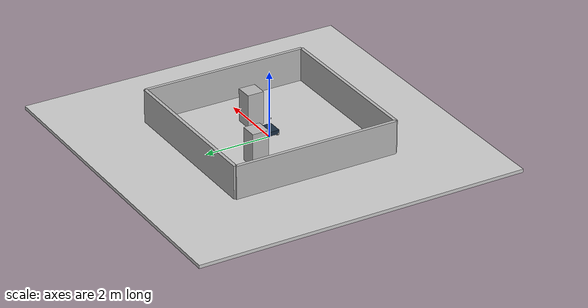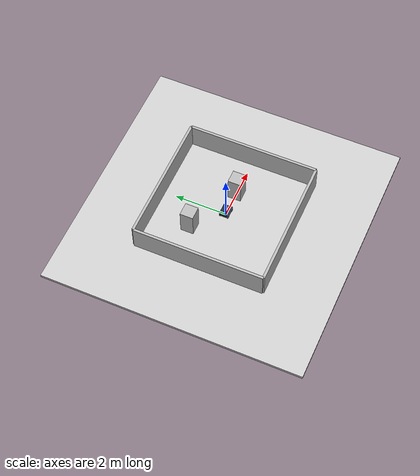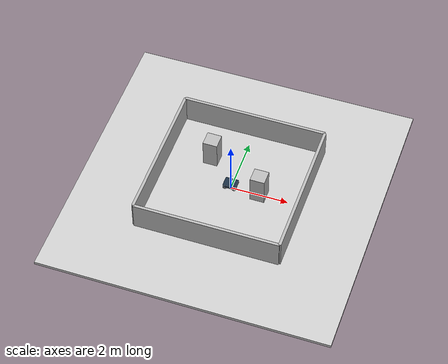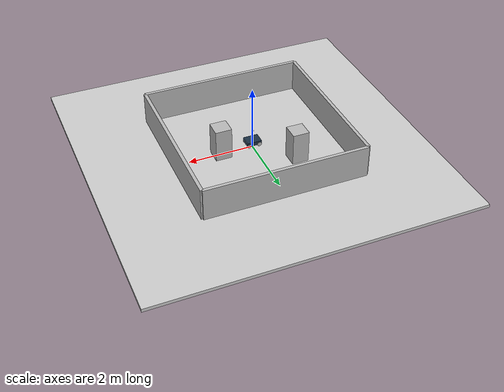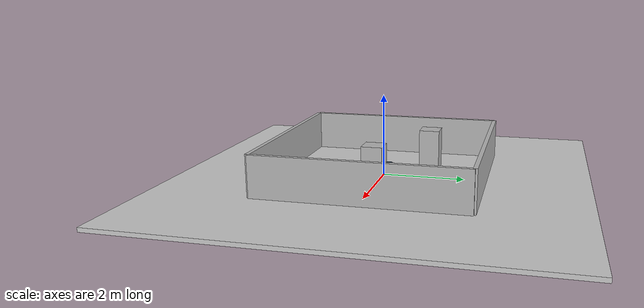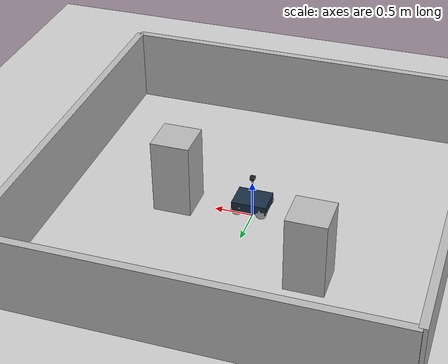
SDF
<?xml version="1.0"?>
<sdf version="1.9">
  <world name="room_world">

    <!-- Немного настроек сцены, чтоб не было темноты -->
    <scene>
      <ambient>0.4 0.4 0.4 1</ambient>
      <background>0.7 0.7 0.7 1</background>
    </scene>

    <!-- Гравитация по умолчанию -->
    <gravity>0 0 -9.81</gravity>

    <!-- Свет -->
    <light name="sun" type="directional">
      <cast_shadows>true</cast_shadows>
      <pose>0 0 10 0.3 0 -0.5</pose>
      <diffuse>1 1 1 1</diffuse>
      <specular>0.2 0.2 0.2 1</specular>
      <direction>-0.5 0.5 -1</direction>
    </light>

    <!-- Пол (10x10 м) -->
    <model name="ground">
      <static>true</static>
      <link name="ground_link">
        <pose>0 0 -0.05 0 0 0</pose>
        <collision name="collision">
          <geometry>
            <box>
              <size>10 10 0.1</size>
            </box>
          </geometry>
        </collision>
        <visual name="visual">
          <geometry>
            <box>
              <size>10 10 0.1</size>
            </box>
          </geometry>
          <material>
            <ambient>0.6 0.6 0.6 1</ambient>
            <diffuse>0.8 0.8 0.8 1</diffuse>
            <specular>0.1 0.1 0.1 1</specular>
          </material>
        </visual>
      </link>
    </model>

    <!-- Стены комнаты 5x5 м -->
    <model name="wall_north">
      <static>true</static>
      <link name="link">
        <pose>0 2.5 0.5 0 0 0</pose>
        <collision name="collision">
          <geometry>
            <box><size>5 0.1 1</size></box>
          </geometry>
        </collision>
        <visual name="visual">
          <geometry>
            <box><size>5 0.1 1</size></box>
          </geometry>
        </visual>
      </link>
    </model>

    <model name="wall_south">
      <static>true</static>
      <link name="link">
        <pose>0 -2.5 0.5 0 0 0</pose>
        <collision name="collision">
          <geometry>
            <box><size>5 0.1 1</size></box>
          </geometry>
        </collision>
        <visual name="visual">
          <geometry>
            <box><size>5 0.1 1</size></box>
          </geometry>
        </visual>
      </link>
    </model>

    <model name="wall_east">
      <static>true</static>
      <link name="link">
        <pose>2.5 0 0.5 0 0 0</pose>
        <collision name="collision">
          <geometry>
            <box><size>0.1 5 1</size></box>
          </geometry>
        </collision>
        <visual name="visual">
          <geometry>
            <box><size>0.1 5 1</size></box>
          </geometry>
        </visual>
      </link>
    </model>

    <model name="wall_west">
      <static>true</static>
      <link name="link">
        <pose>-2.5 0 0.5 0 0 0</pose>
        <collision name="collision">
          <geometry>
            <box><size>0.1 5 1</size></box>
          </geometry>
        </collision>
        <visual name="visual">
          <geometry>
            <box><size>0.1 5 1</size></box>
          </geometry>
        </visual>
      </link>
    </model>

    <!-- Препятствия: два куба -->
    <model name="box1">
      <static>true</static>
      <link name="link">
        <pose>1.0 0 0.5 0 0 0</pose>
        <collision name="collision">
          <geometry>
            <box><size>0.5 0.5 1.0</size></box>
          </geometry>
        </collision>
        <visual name="visual">
          <geometry>
            <box><size>0.5 0.5 1.0</size></box>
          </geometry>
        </visual>
      </link>
    </model>

    <model name="box2">
      <static>true</static>
      <link name="link">
        <pose>-1.0 1.0 0.5 0 0 0</pose>
        <collision name="collision">
          <geometry>
            <box><size>0.5 0.5 1.0</size></box>
          </geometry>
        </collision>
        <visual name="visual">
          <geometry>
            <box><size>0.5 0.5 1.0</size></box>
          </geometry>
        </visual>
      </link>
    </model>

    <!-- Робот -->
    <include name="diff_robot">
      <uri>model://diff_robot</uri>
      <pose>0 0 0.1 0 0 0</pose>
    </include>

  </world>
</sdf>

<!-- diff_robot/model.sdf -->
<sdf version="1.9">
  <model name="diff_robot">
    <static>false</static>
    <pose>0 0 0 0 0 0</pose>

    <!-- ================== КОРПУС ================== -->
    <link name="base_link">
      <pose>0 0 0.12 0 0 0</pose>
      <inertial>
        <mass>12.0</mass>
        <inertia>
          <ixx>0.18</ixx><ixy>0</ixy><ixz>0</ixz>
          <iyy>0.24</iyy><iyz>0</iyz>
          <izz>0.30</izz>
        </inertia>
      </inertial>
      <visual name="base_vis">
        <geometry>
          <box><size>0.45 0.35 0.12</size></box>
        </geometry>
        <material>
          <ambient>0.08 0.12 0.18 1</ambient>
          <diffuse>0.10 0.18 0.26 1</diffuse>
        </material>
      </visual>
      <collision name="base_col">
        <geometry>
          <box><size>0.45 0.35 0.12</size></box>
        </geometry>
      </collision>
    </link>

    <!-- ================== КОЛЁСА ================== -->
    <link name="wheel_fl">
      <pose>0.16 0.15 0.07 1.57079632679 0 0</pose>
      <inertial>
        <mass>0.6</mass>
        <inertia>
          <ixx>0.0012</ixx><ixy>0</ixy><ixz>0</ixz>
          <iyy>0.0006</iyy><iyz>0</iyz>
          <izz>0.0012</izz>
        </inertia>
      </inertial>
      <visual name="vis">
        <geometry>
          <cylinder><radius>0.07</radius><length>0.05</length></cylinder>
        </geometry>
      </visual>
      <collision name="col">
        <geometry>
          <cylinder><radius>0.07</radius><length>0.05</length></cylinder>
        </geometry>
      </collision>
    </link>
    <joint name="wheel_fl_joint" type="revolute">
      <parent>base_link</parent>
      <child>wheel_fl</child>
      <axis>
        <xyz expressed_in="wheel_fl">0 0 1</xyz>
        <limit><lower>-1e16</lower><upper>1e16</upper></limit>
      </axis>
    </joint>

    <link name="wheel_fr">
      <pose>0.16 -0.15 0.07 1.57079632679 0 0</pose>
      <inertial>
        <mass>0.6</mass>
        <inertia>
          <ixx>0.0012</ixx><ixy>0</ixy><ixz>0</ixz>
          <iyy>0.0006</iyy><iyz>0</iyz>
          <izz>0.0012</izz>
        </inertia>
      </inertial>
      <visual name="vis">
        <geometry>
          <cylinder><radius>0.07</radius><length>0.05</length></cylinder>
        </geometry>
      </visual>
      <collision name="col">
        <geometry>
          <cylinder><radius>0.07</radius><length>0.05</length></cylinder>
        </geometry>
      </collision>
    </link>
    <joint name="wheel_fr_joint" type="revolute">
      <parent>base_link</parent>
      <child>wheel_fr</child>
      <axis>
        <xyz expressed_in="wheel_fr">0 0 1</xyz>
        <limit><lower>-1e16</lower><upper>1e16</upper></limit>
      </axis>
    </joint>

    <link name="wheel_rl">
      <pose>-0.16 0.15 0.07 1.57079632679 0 0</pose>
      <inertial>
        <mass>0.6</mass>
        <inertia>
          <ixx>0.0012</ixx><ixy>0</ixy><ixz>0</ixz>
          <iyy>0.0006</iyy><iyz>0</iyz>
          <izz>0.0012</izz>
        </inertia>
      </inertial>
      <visual name="vis">
        <geometry>
          <cylinder><radius>0.07</radius><length>0.05</length></cylinder>
        </geometry>
      </visual>
      <collision name="col">
        <geometry>
          <cylinder><radius>0.07</radius><length>0.05</length></cylinder>
        </geometry>
      </collision>
    </link>
    <joint name="wheel_rl_joint" type="revolute">
      <parent>base_link</parent>
      <child>wheel_rl</child>
      <axis>
        <xyz expressed_in="wheel_rl">0 0 1</xyz>
        <limit><lower>-1e16</lower><upper>1e16</upper></limit>
      </axis>
    </joint>

    <link name="wheel_rr">
      <pose>-0.16 -0.15 0.07 1.57079632679 0 0</pose>
      <inertial>
        <mass>0.6</mass>
        <inertia>
          <ixx>0.0012</ixx><ixy>0</ixy><ixz>0</ixz>
          <iyy>0.0006</iyy><iyz>0</iyz>
          <izz>0.0012</izz>
        </inertia>
      </inertial>
      <visual name="vis">
        <geometry>
          <cylinder><radius>0.07</radius><length>0.05</length></cylinder>
        </geometry>
      </visual>
      <collision name="col">
        <geometry>
          <cylinder><radius>0.07</radius><length>0.05</length></cylinder>
        </geometry>
      </collision>
    </link>
    <joint name="wheel_rr_joint" type="revolute">
      <parent>base_link</parent>
      <child>wheel_rr</child>
      <axis>
        <xyz expressed_in="wheel_rr">0 0 1</xyz>
        <limit><lower>-1e16</lower><upper>1e16</upper></limit>
      </axis>
    </joint>

    <!-- ================== СЕНСОРНАЯ МАЧТА ================== -->
    <link name="mast_link">
      <pose>0 0 0.30 0 0 0</pose>
      <inertial>
        <mass>0.08</mass>
        <inertia>
          <ixx>0.0004</ixx><ixy>0</ixy><ixz>0</ixz>
          <iyy>0.0004</iyy><iyz>0</iyz>
          <izz>0.0004</izz>
        </inertia>
      </inertial>
      <visual name="mast_vis">
        <geometry>
          <cylinder><radius>0.01</radius><length>0.36</length></cylinder>
        </geometry>
        <material>
          <ambient>0.18 0.18 0.18 1</ambient>
          <diffuse>0.22 0.22 0.22 1</diffuse>
        </material>
      </visual>
      <collision name="mast_col">
        <geometry>
          <cylinder><radius>0.01</radius><length>0.36</length></cylinder>
        </geometry>
      </collision>
    </link>
    <joint name="mast_fixed" type="fixed">
      <parent>base_link</parent>
      <child>mast_link</child>
    </joint>

    <!-- RGB-D камера на верхушке мачты -->
    <link name="camera_link">
      <pose>0 0 0.48 0 0 0</pose>
      <inertial>
        <mass>0.12</mass>
        <inertia>
          <ixx>0.0008</ixx><ixy>0</ixy><ixz>0</ixz>
          <iyy>0.0008</iyy><iyz>0</iyz>
          <izz>0.0008</izz>
        </inertia>
      </inertial>

      <sensor name="rgbd_camera" type="rgbd_camera">
        <pose>0 0 0 0 -1.57079632679 0</pose>
        <always_on>true</always_on>
        <update_rate>15</update_rate>
        <visualize>true</visualize>

        <topic>/camera/color/image</topic>
        <depth_topic>/camera/depth/image</depth_topic>
        <point_cloud_topic>/camera/depth/points</point_cloud_topic>
        <camera_info_topic>/camera/color/camera_info</camera_info_topic>
        <frame_id>camera_link</frame_id>

        <camera>
          <horizontal_fov>1.047</horizontal_fov>
          <image>
            <width>640</width>
            <height>480</height>
            <format>R8G8B8</format>
          </image>
          <clip>
            <near>0.05</near>
            <far>25</far>
          </clip>
        </camera>
      </sensor>

      <visual name="cam_body">
        <geometry>
          <box><size>0.06 0.06 0.04</size></box>
        </geometry>
        <material>
          <ambient>0.08 0.08 0.08 1</ambient>
          <diffuse>0.10 0.10 0.10 1</diffuse>
        </material>
      </visual>
      <collision name="cam_col">
        <geometry>
          <box><size>0.06 0.06 0.04</size></box>
        </geometry>
      </collision>
    </link>
    <joint name="camera_fixed" type="fixed">
      <parent>mast_link</parent>
      <child>camera_link</child>
    </joint>

    <!-- Лидар 2D (GPU Lidar для Harmonic) -->
    <link name="lidar_link">
      <pose>0.18 0 0.34 0 0 0</pose>
      <inertial>
        <mass>0.10</mass>
        <inertia>
          <ixx>0.0002</ixx><ixy>0</ixy><ixz>0</ixz>
          <iyy>0.0002</iyy><iyz>0</iyz>
          <izz>0.0002</izz>
        </inertia>
      </inertial>

      <sensor name="lidar" type="gpu_lidar">
        <pose>0 0 0 0 0 0</pose>
        <always_on>true</always_on>
        <update_rate>15</update_rate>
        <visualize>true</visualize>

        <topic>/scan</topic>
        <frame_id>lidar_link</frame_id>

        <lidar>
          <scan>
            <horizontal>
              <samples>720</samples>
              <resolution>1</resolution>
              <min_angle>-3.14159</min_angle>
              <max_angle>3.14159</max_angle>
            </horizontal>
          </scan>
          <range>
            <min>0.18</min>
            <max>18.0</max>
          </range>
        </lidar>
      </sensor>
    </link>
    <joint name="lidar_joint" type="fixed">
      <parent>base_link</parent>
      <child>lidar_link</child>
    </joint>

    <!-- IMU -->
    <link name="imu_link">
      <pose>0 0 0.20 0 0 0</pose>
      <inertial>
        <mass>0.05</mass>
        <inertia>
          <ixx>0.0001</ixx><ixy>0</ixy><ixz>0</ixz>
          <iyy>0.0001</iyy><iyz>0</iyz>
          <izz>0.0001</izz>
        </inertia>
      </inertial>
      <sensor name="imu" type="imu">
        <always_on>true</always_on>
        <update_rate>100</update_rate>
        <topic>/imu</topic>
        <frame_id>imu_link</frame_id>
      </sensor>
    </link>
    <joint name="imu_fixed" type="fixed">
      <parent>base_link</parent>
      <child>imu_link</child>
    </joint>

    <!-- Plugin: диф. привод -->
    <plugin name="gz::sim::systems::DiffDrive" filename="gz-sim-diff-drive-system">
      <left_joint>wheel_fl_joint</left_joint>
      <left_joint>wheel_rl_joint</left_joint>
      <right_joint>wheel_fr_joint</right_joint>
      <right_joint>wheel_rr_joint</right_joint>
      <wheel_separation>0.30</wheel_separation>
      <wheel_radius>0.07</wheel_radius>
      <topic>/cmd_vel</topic>
      <odom_topic>/odom</odom_topic>
      <frame_id>odom</frame_id>
      <child_frame_id>base_footprint</child_frame_id>
      <publish_odom>true</publish_odom>
    </plugin>

  </model>
</sdf>
